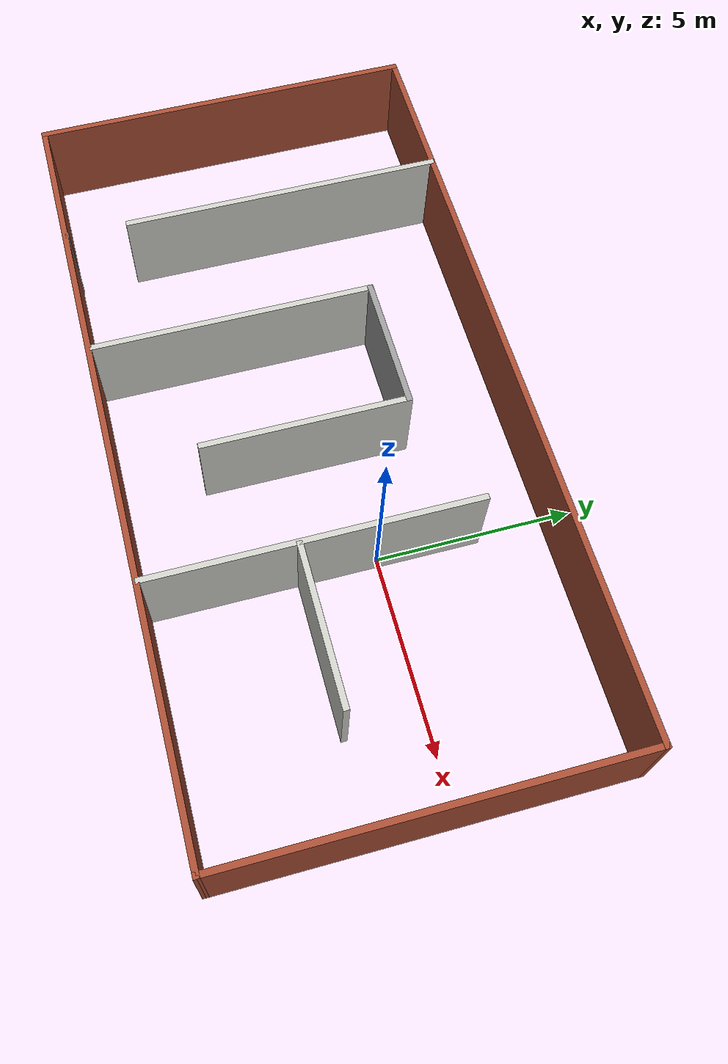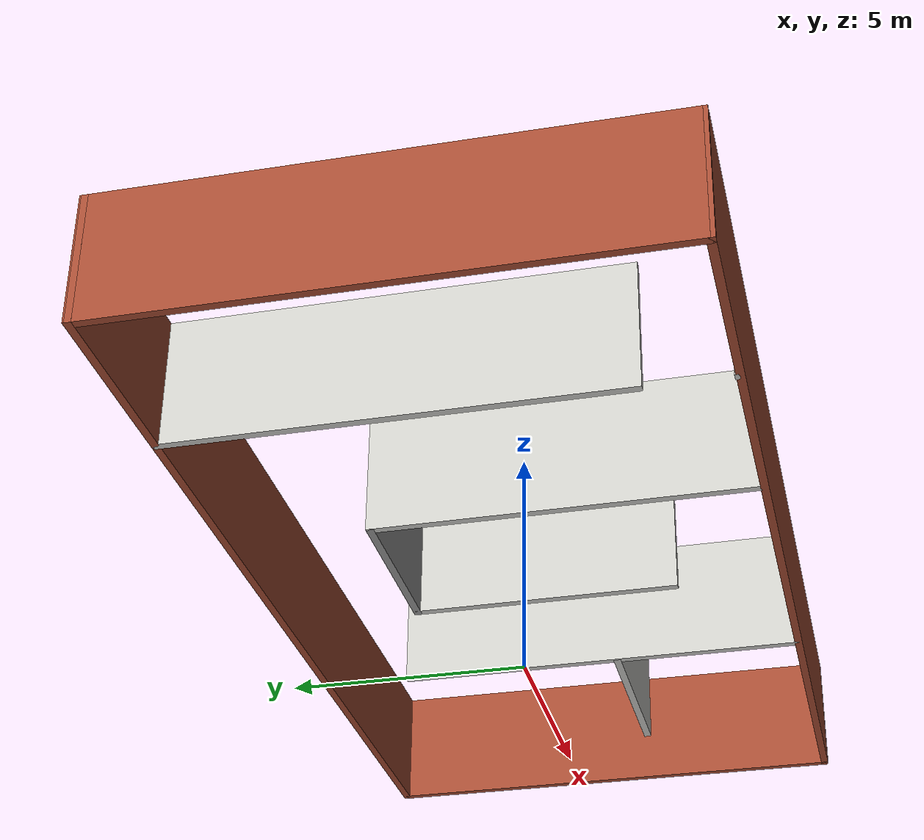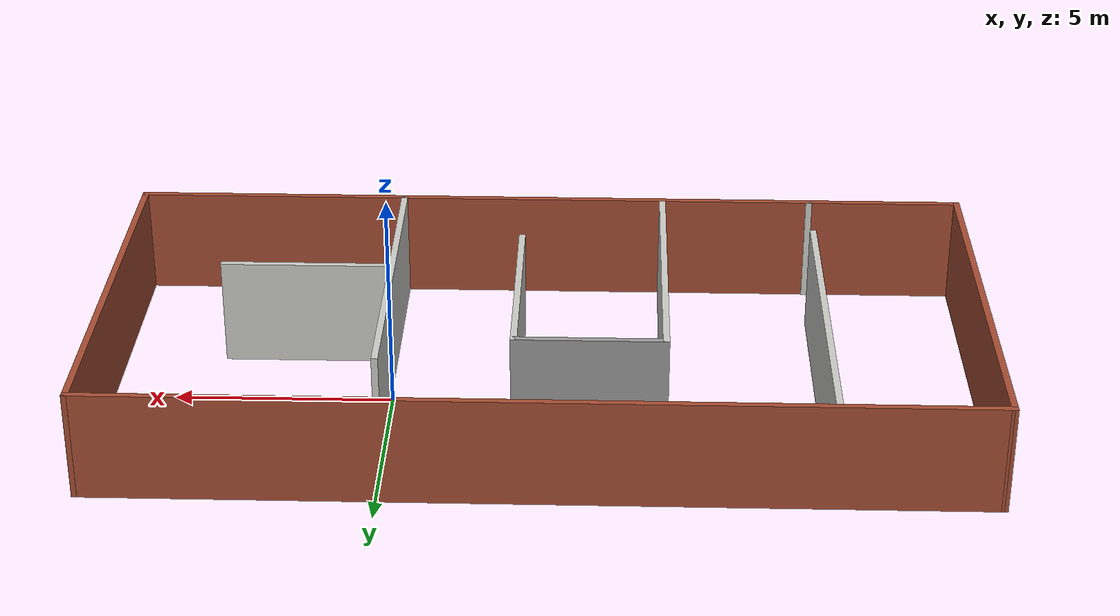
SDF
<?xml version='1.0'?>
<sdf version='1.6'>
  <model name='building'>
    <pose frame=''>-3.45 -0.7 0 0 -0 0</pose>
    <link name='Wall_10'>
      <pose frame=''>-6.32254 0.027642 0 0 0 -1.5708</pose>
      <visual name='Wall_10_Visual_0'>
        <pose frame=''>-0.794906 0 1.25 0 -0 0</pose>
        <geometry>
          <box>
            <size>8.41019 0.15 2.5</size>
          </box>
        </geometry>
        <material>
          <script>
            <uri>file://media/materials/scripts/gazebo.material</uri>
            <name>Gazebo/CeilingTiled</name>
          </script>
          <ambient>1 1 1 1</ambient>
        </material>
        <meta>
          <layer>0</layer>
        </meta>
      </visual>
      <collision name='Wall_10_Collision_0'>
        <geometry>
          <box>
            <size>8.41019 0.15 2.5</size>
          </box>
        </geometry>
        <pose frame=''>-0.794906 0 1.25 0 -0 0</pose>
      </collision>
      <visual name='Wall_10_Visual_1'>
        <pose frame=''>4.95509 0 1.25 0 -0 0</pose>
        <geometry>
          <box>
            <size>0.089812 0.15 2.5</size>
          </box>
        </geometry>
        <material>
          <script>
            <uri>file://media/materials/scripts/gazebo.material</uri>
            <name>Gazebo/CeilingTiled</name>
          </script>
          <ambient>1 1 1 1</ambient>
        </material>
        <meta>
          <layer>0</layer>
        </meta>
      </visual>
      <collision name='Wall_10_Collision_1'>
        <geometry>
          <box>
            <size>0.089812 0.15 2.5</size>
          </box>
        </geometry>
        <pose frame=''>4.95509 0 1.25 0 -0 0</pose>
      </collision>
    </link>
    <link name='Wall_12'>
      <collision name='Wall_12_Collision'>
        <geometry>
          <box>
            <size>7.25 0.15 2.5</size>
          </box>
        </geometry>
        <pose frame=''>0 0 1.25 0 -0 0</pose>
      </collision>
      <visual name='Wall_12_Visual'>
        <pose frame=''>0 0 1.25 0 -0 0</pose>
        <geometry>
          <box>
            <size>7.25 0.15 2.5</size>
          </box>
        </geometry>
        <material>
          <script>
            <uri>file://media/materials/scripts/gazebo.material</uri>
            <name>Gazebo/CeilingTiled</name>
          </script>
          <ambient>1 1 1 1</ambient>
        </material>
        <meta>
          <layer>0</layer>
        </meta>
      </visual>
      <pose frame=''>-2.75076 -1.31896 0 0 -0 1.5708</pose>
    </link>
    <link name='Wall_13'>
      <collision name='Wall_13_Collision'>
        <geometry>
          <box>
            <size>3.5 0.15 2.5</size>
          </box>
        </geometry>
        <pose frame=''>0 0 1.25 0 -0 0</pose>
      </collision>
      <visual name='Wall_13_Visual'>
        <pose frame=''>0 0 1.25 0 -0 0</pose>
        <geometry>
          <box>
            <size>3.5 0.15 2.5</size>
          </box>
        </geometry>
        <material>
          <script>
            <uri>file://media/materials/scripts/gazebo.material</uri>
            <name>Gazebo/Grey</name>
          </script>
          <ambient>1 1 1 1</ambient>
        </material>
        <meta>
          <layer>0</layer>
        </meta>
      </visual>
      <pose frame=''>-1.07576 2.23104 0 0 -0 0</pose>
    </link>
    <link name='Wall_14'>
      <collision name='Wall_14_Collision'>
        <geometry>
          <box>
            <size>5.25 0.15 2.5</size>
          </box>
        </geometry>
        <pose frame=''>0 0 1.25 0 -0 0</pose>
      </collision>
      <visual name='Wall_14_Visual'>
        <pose frame=''>0 0 1.25 0 -0 0</pose>
        <geometry>
          <box>
            <size>5.25 0.15 2.5</size>
          </box>
        </geometry>
        <material>
          <script>
            <uri>file://media/materials/scripts/gazebo.material</uri>
            <name>Gazebo/CeilingTiled</name>
          </script>
          <ambient>1 1 1 1</ambient>
        </material>
        <meta>
          <layer>0</layer>
        </meta>
      </visual>
      <pose frame=''>0.599241 -0.318964 0 0 0 -1.5708</pose>
    </link>
    <link name='Wall_16'>
      <collision name='Wall_16_Collision'>
        <geometry>
          <box>
            <size>8.25 0.15 2.5</size>
          </box>
        </geometry>
        <pose frame=''>0 0 1.25 0 -0 0</pose>
      </collision>
      <visual name='Wall_16_Visual'>
        <pose frame=''>0 0 1.25 0 -0 0</pose>
        <geometry>
          <box>
            <size>8.25 0.15 2.5</size>
          </box>
        </geometry>
        <material>
          <script>
            <uri>file://media/materials/scripts/gazebo.material</uri>
            <name>Gazebo/CeilingTiled</name>
          </script>
          <ambient>1 1 1 1</ambient>
        </material>
        <meta>
          <layer>0</layer>
        </meta>
      </visual>
      <pose frame=''>3.5614 -0.871566 0 0 -0 1.5708</pose>
    </link>
    <link name='Wall_18'>
      <collision name='Wall_18_Collision'>
        <geometry>
          <box>
            <size>4 0.15 2.5</size>
          </box>
        </geometry>
        <pose frame=''>0 0 1.25 0 -0 0</pose>
      </collision>
      <visual name='Wall_18_Visual'>
        <pose frame=''>0 0 1.25 0 -0 0</pose>
        <geometry>
          <box>
            <size>4 0.15 2.5</size>
          </box>
        </geometry>
        <material>
          <script>
            <uri>file://media/materials/scripts/gazebo.material</uri>
            <name>Gazebo/CeilingTiled</name>
          </script>
          <ambient>0.435294 0.796078 0.67451 1</ambient>
        </material>
        <meta>
          <layer>0</layer>
        </meta>
      </visual>
      <pose frame=''>5.539 -1.23948 0 0 -0 0</pose>
    </link>
    <link name='Wall_5'>
      <collision name='Wall_5_Collision'>
        <geometry>
          <box>
            <size>20.0103 0.15 2.5</size>
          </box>
        </geometry>
        <pose frame=''>0 0 1.25 0 -0 0</pose>
      </collision>
      <visual name='Wall_5_Visual'>
        <pose frame=''>0 0 1.25 0 -0 0</pose>
        <geometry>
          <box>
            <size>20.0103 0.15 2.5</size>
          </box>
        </geometry>
        <material>
          <script>
            <uri>file://media/materials/scripts/gazebo.material</uri>
            <name>Gazebo/Bricks</name>
          </script>
          <ambient>1 1 1 1</ambient>
        </material>
        <meta>
          <layer>0</layer>
        </meta>
      </visual>
      <pose frame=''>-0.015 4.98 0 0 -0 0</pose>
    </link>
    <link name='Wall_6'>
      <collision name='Wall_6_Collision'>
        <geometry>
          <box>
            <size>10.1103 0.15 2.5</size>
          </box>
        </geometry>
        <pose frame=''>0 0 1.25 0 -0 0</pose>
      </collision>
      <visual name='Wall_6_Visual'>
        <pose frame=''>0 0 1.25 0 -0 0</pose>
        <geometry>
          <box>
            <size>10.1103 0.15 2.5</size>
          </box>
        </geometry>
        <material>
          <script>
            <uri>file://media/materials/scripts/gazebo.material</uri>
            <name>Gazebo/Bricks</name>
          </script>
          <ambient>1 1 1 1</ambient>
        </material>
        <meta>
          <layer>0</layer>
        </meta>
      </visual>
      <pose frame=''>9.93 0 0 0 0 -1.56778</pose>
    </link>
    <link name='Wall_7'>
      <collision name='Wall_7_Collision'>
        <geometry>
          <box>
            <size>20.01 0.15 2.5</size>
          </box>
        </geometry>
        <pose frame=''>0 0 1.25 0 -0 0</pose>
      </collision>
      <visual name='Wall_7_Visual'>
        <pose frame=''>0 0 1.25 0 -0 0</pose>
        <geometry>
          <box>
            <size>20.01 0.15 2.5</size>
          </box>
        </geometry>
        <material>
          <script>
            <uri>file://media/materials/scripts/gazebo.material</uri>
            <name>Gazebo/Bricks</name>
          </script>
          <ambient>1 1 1 1</ambient>
        </material>
        <meta>
          <layer>0</layer>
        </meta>
      </visual>
      <pose frame=''>0.015 -4.98 0 0 -0 3.14159</pose>
    </link>
    <link name='Wall_8'>
      <collision name='Wall_8_Collision'>
        <geometry>
          <box>
            <size>10.11 0.15 2.5</size>
          </box>
        </geometry>
        <pose frame=''>0 0 1.25 0 -0 0</pose>
      </collision>
      <visual name='Wall_8_Visual'>
        <pose frame=''>0 0 1.25 0 -0 0</pose>
        <geometry>
          <box>
            <size>10.11 0.15 2.5</size>
          </box>
        </geometry>
        <material>
          <script>
            <uri>file://media/materials/scripts/gazebo.material</uri>
            <name>Gazebo/Bricks</name>
          </script>
          <ambient>1 1 1 1</ambient>
        </material>
        <meta>
          <layer>0</layer>
        </meta>
      </visual>
      <pose frame=''>-9.93 0 0 0 -0 1.57381</pose>
    </link>
    <static>1</static>
  </model>
</sdf>
